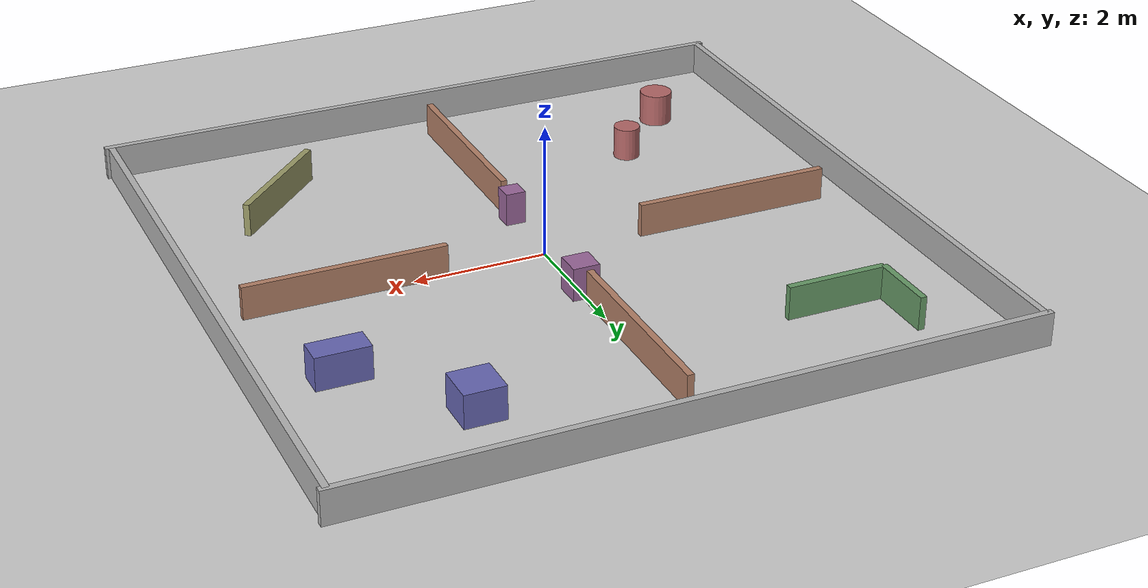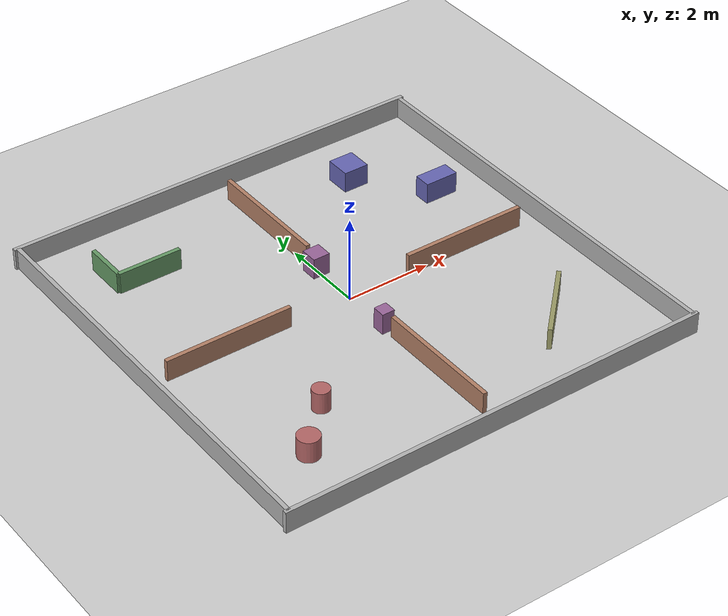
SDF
<?xml version="1.0" ?>
<sdf version="1.8">
  <world name="mapping_world">
    <physics name="1ms" type="ignored">
      <max_step_size>0.001</max_step_size>
      <real_time_factor>1.0</real_time_factor>
    </physics>

    <plugin filename="libignition-gazebo-physics-system.so"
            name="ignition::gazebo::systems::Physics"/>
    <plugin filename="libignition-gazebo-sensors-system.so"
            name="ignition::gazebo::systems::Sensors">
      <render_engine>ogre2</render_engine>
    </plugin>
    <plugin filename="libignition-gazebo-scene-broadcaster-system.so"
            name="ignition::gazebo::systems::SceneBroadcaster"/>
    <plugin filename="libignition-gazebo-user-commands-system.so"
            name="ignition::gazebo::systems::UserCommands"/>
    <plugin filename="libignition-gazebo-contact-system.so"
            name="ignition::gazebo::systems::Contact"/>

    <!-- Sunlight -->
    <light type="directional" name="sun">
      <cast_shadows>true</cast_shadows>
      <pose>0 0 10 0 0 0</pose>
      <diffuse>0.8 0.8 0.8 1</diffuse>
      <specular>0.2 0.2 0.2 1</specular>
      <attenuation>
        <range>1000</range>
        <constant>0.9</constant>
        <linear>0.01</linear>
        <quadratic>0.001</quadratic>
      </attenuation>
      <direction>-0.5 0.1 -0.9</direction>
    </light>

    <!-- Ground plane -->
    <model name="ground_plane">
      <static>true</static>
      <link name="link">
        <collision name="collision">
          <geometry>
            <plane>
              <normal>0 0 1</normal>
              <size>100 100</size>
            </plane>
          </geometry>
        </collision>
        <visual name="visual">
          <geometry>
            <plane>
              <normal>0 0 1</normal>
              <size>100 100</size>
            </plane>
          </geometry>
          <material>
            <ambient>0.8 0.8 0.8 1</ambient>
            <diffuse>0.8 0.8 0.8 1</diffuse>
            <specular>0.8 0.8 0.8 1</specular>
          </material>
        </visual>
      </link>
    </model>

    <!-- North wall (y=5) -->
    <model name="wall_north">
      <static>true</static>
      <pose>0 5 0.25 0 0 0</pose>
      <link name="link">
        <collision name="collision">
          <geometry><box><size>10.2 0.1 0.5</size></box></geometry>
        </collision>
        <visual name="visual">
          <geometry><box><size>10.2 0.1 0.5</size></box></geometry>
          <material>
            <ambient>0.5 0.5 0.5 1</ambient>
            <diffuse>0.7 0.7 0.7 1</diffuse>
          </material>
        </visual>
      </link>
    </model>

    <!-- South wall (y=-5) -->
    <model name="wall_south">
      <static>true</static>
      <pose>0 -5 0.25 0 0 0</pose>
      <link name="link">
        <collision name="collision">
          <geometry><box><size>10.2 0.1 0.5</size></box></geometry>
        </collision>
        <visual name="visual">
          <geometry><box><size>10.2 0.1 0.5</size></box></geometry>
          <material>
            <ambient>0.5 0.5 0.5 1</ambient>
            <diffuse>0.7 0.7 0.7 1</diffuse>
          </material>
        </visual>
      </link>
    </model>

    <!-- East wall (x=5) -->
    <model name="wall_east">
      <static>true</static>
      <pose>5 0 0.25 0 0 0</pose>
      <link name="link">
        <collision name="collision">
          <geometry><box><size>0.1 10.0 0.5</size></box></geometry>
        </collision>
        <visual name="visual">
          <geometry><box><size>0.1 10.0 0.5</size></box></geometry>
          <material>
            <ambient>0.5 0.5 0.5 1</ambient>
            <diffuse>0.7 0.7 0.7 1</diffuse>
          </material>
        </visual>
      </link>
    </model>

    <!-- West wall (x=-5) -->
    <model name="wall_west">
      <static>true</static>
      <pose>-5 0 0.25 0 0 0</pose>
      <link name="link">
        <collision name="collision">
          <geometry><box><size>0.1 10.0 0.5</size></box></geometry>
        </collision>
        <visual name="visual">
          <geometry><box><size>0.1 10.0 0.5</size></box></geometry>
          <material>
            <ambient>0.5 0.5 0.5 1</ambient>
            <diffuse>0.7 0.7 0.7 1</diffuse>
          </material>
        </visual>
      </link>
    </model>

    <!-- Horizontal divider wall (center, with 2m gap for corridor) -->
    <!-- Left section of horizontal divider -->
    <model name="wall_h_left">
      <static>true</static>
      <pose>-3.0 0 0.25 0 0 0</pose>
      <link name="link">
        <collision name="collision">
          <geometry><box><size>3.0 0.1 0.5</size></box></geometry>
        </collision>
        <visual name="visual">
          <geometry><box><size>3.0 0.1 0.5</size></box></geometry>
          <material>
            <ambient>0.6 0.4 0.3 1</ambient>
            <diffuse>0.7 0.5 0.4 1</diffuse>
          </material>
        </visual>
      </link>
    </model>

    <!-- Right section of horizontal divider -->
    <model name="wall_h_right">
      <static>true</static>
      <pose>3.0 0 0.25 0 0 0</pose>
      <link name="link">
        <collision name="collision">
          <geometry><box><size>3.0 0.1 0.5</size></box></geometry>
        </collision>
        <visual name="visual">
          <geometry><box><size>3.0 0.1 0.5</size></box></geometry>
          <material>
            <ambient>0.6 0.4 0.3 1</ambient>
            <diffuse>0.7 0.5 0.4 1</diffuse>
          </material>
        </visual>
      </link>
    </model>

    <!-- Vertical divider wall (center, with gaps) -->
    <!-- Top section of vertical divider -->
    <model name="wall_v_top">
      <static>true</static>
      <pose>0 3.0 0.25 0 0 0</pose>
      <link name="link">
        <collision name="collision">
          <geometry><box><size>0.1 3.0 0.5</size></box></geometry>
        </collision>
        <visual name="visual">
          <geometry><box><size>0.1 3.0 0.5</size></box></geometry>
          <material>
            <ambient>0.6 0.4 0.3 1</ambient>
            <diffuse>0.7 0.5 0.4 1</diffuse>
          </material>
        </visual>
      </link>
    </model>

    <!-- Bottom section of vertical divider -->
    <model name="wall_v_bottom">
      <static>true</static>
      <pose>0 -3.0 0.25 0 0 0</pose>
      <link name="link">
        <collision name="collision">
          <geometry><box><size>0.1 3.0 0.5</size></box></geometry>
        </collision>
        <visual name="visual">
          <geometry><box><size>0.1 3.0 0.5</size></box></geometry>
          <material>
            <ambient>0.6 0.4 0.3 1</ambient>
            <diffuse>0.7 0.5 0.4 1</diffuse>
          </material>
        </visual>
      </link>
    </model>

    <!-- ============================================================
         ROOM FEATURES - obstacles/furniture inside rooms
         ============================================================ -->

    <!-- NW Room: L-shaped obstacle -->
    <model name="obstacle_nw_1">
      <static>true</static>
      <pose>-3.0 3.0 0.25 0 0 0</pose>
      <link name="link">
        <collision name="collision">
          <geometry><box><size>1.5 0.1 0.5</size></box></geometry>
        </collision>
        <visual name="visual">
          <geometry><box><size>1.5 0.1 0.5</size></box></geometry>
          <material>
            <ambient>0.3 0.5 0.3 1</ambient>
            <diffuse>0.4 0.6 0.4 1</diffuse>
          </material>
        </visual>
      </link>
    </model>

    <model name="obstacle_nw_2">
      <static>true</static>
      <pose>-3.75 3.5 0.25 0 0 0</pose>
      <link name="link">
        <collision name="collision">
          <geometry><box><size>0.1 1.0 0.5</size></box></geometry>
        </collision>
        <visual name="visual">
          <geometry><box><size>0.1 1.0 0.5</size></box></geometry>
          <material>
            <ambient>0.3 0.5 0.3 1</ambient>
            <diffuse>0.4 0.6 0.4 1</diffuse>
          </material>
        </visual>
      </link>
    </model>

    <!-- NE Room: Box obstacles -->
    <model name="obstacle_ne_1">
      <static>true</static>
      <pose>2.5 3.5 0.25 0 0 0</pose>
      <link name="link">
        <collision name="collision">
          <geometry><box><size>0.6 0.6 0.5</size></box></geometry>
        </collision>
        <visual name="visual">
          <geometry><box><size>0.6 0.6 0.5</size></box></geometry>
          <material>
            <ambient>0.3 0.3 0.6 1</ambient>
            <diffuse>0.4 0.4 0.7 1</diffuse>
          </material>
        </visual>
      </link>
    </model>

    <model name="obstacle_ne_2">
      <static>true</static>
      <pose>3.8 2.0 0.25 0 0 0</pose>
      <link name="link">
        <collision name="collision">
          <geometry><box><size>0.8 0.4 0.5</size></box></geometry>
        </collision>
        <visual name="visual">
          <geometry><box><size>0.8 0.4 0.5</size></box></geometry>
          <material>
            <ambient>0.3 0.3 0.6 1</ambient>
            <diffuse>0.4 0.4 0.7 1</diffuse>
          </material>
        </visual>
      </link>
    </model>

    <!-- SW Room: Cylinder pillars -->
    <model name="pillar_sw_1">
      <static>true</static>
      <pose>-2.5 -2.5 0.25 0 0 0</pose>
      <link name="link">
        <collision name="collision">
          <geometry><cylinder><radius>0.2</radius><length>0.5</length></cylinder></geometry>
        </collision>
        <visual name="visual">
          <geometry><cylinder><radius>0.2</radius><length>0.5</length></cylinder></geometry>
          <material>
            <ambient>0.6 0.3 0.3 1</ambient>
            <diffuse>0.7 0.4 0.4 1</diffuse>
          </material>
        </visual>
      </link>
    </model>

    <model name="pillar_sw_2">
      <static>true</static>
      <pose>-3.5 -3.5 0.25 0 0 0</pose>
      <link name="link">
        <collision name="collision">
          <geometry><cylinder><radius>0.25</radius><length>0.5</length></cylinder></geometry>
        </collision>
        <visual name="visual">
          <geometry><cylinder><radius>0.25</radius><length>0.5</length></cylinder></geometry>
          <material>
            <ambient>0.6 0.3 0.3 1</ambient>
            <diffuse>0.7 0.4 0.4 1</diffuse>
          </material>
        </visual>
      </link>
    </model>

    <!-- SE Room: Diagonal wall -->
    <model name="obstacle_se_1">
      <static>true</static>
      <pose>3.0 -3.0 0.25 0 0 0.7854</pose>
      <link name="link">
        <collision name="collision">
          <geometry><box><size>2.0 0.1 0.5</size></box></geometry>
        </collision>
        <visual name="visual">
          <geometry><box><size>2.0 0.1 0.5</size></box></geometry>
          <material>
            <ambient>0.5 0.5 0.3 1</ambient>
            <diffuse>0.6 0.6 0.4 1</diffuse>
          </material>
        </visual>
      </link>
    </model>

    <!-- Central corridor obstacles -->
    <model name="corridor_obstacle_1">
      <static>true</static>
      <pose>0 1.2 0.25 0 0 0</pose>
      <link name="link">
        <collision name="collision">
          <geometry><box><size>0.4 0.4 0.5</size></box></geometry>
        </collision>
        <visual name="visual">
          <geometry><box><size>0.4 0.4 0.5</size></box></geometry>
          <material>
            <ambient>0.5 0.3 0.5 1</ambient>
            <diffuse>0.6 0.4 0.6 1</diffuse>
          </material>
        </visual>
      </link>
    </model>

    <model name="corridor_obstacle_2">
      <static>true</static>
      <pose>0 -1.2 0.25 0 0 0</pose>
      <link name="link">
        <collision name="collision">
          <geometry><box><size>0.3 0.3 0.5</size></box></geometry>
        </collision>
        <visual name="visual">
          <geometry><box><size>0.3 0.3 0.5</size></box></geometry>
          <material>
            <ambient>0.5 0.3 0.5 1</ambient>
            <diffuse>0.6 0.4 0.6 1</diffuse>
          </material>
        </visual>
      </link>
    </model>

  </world>
</sdf>
